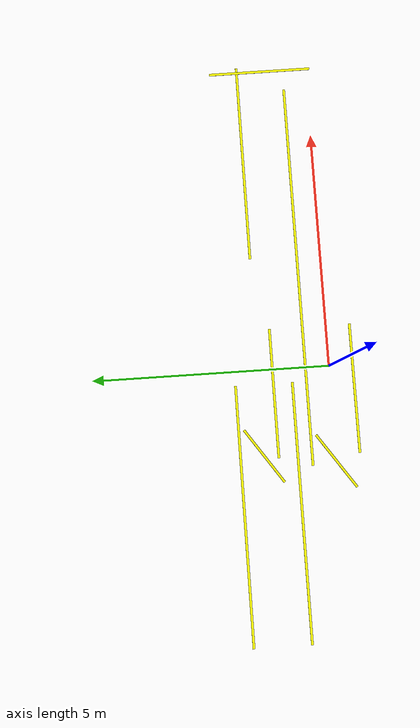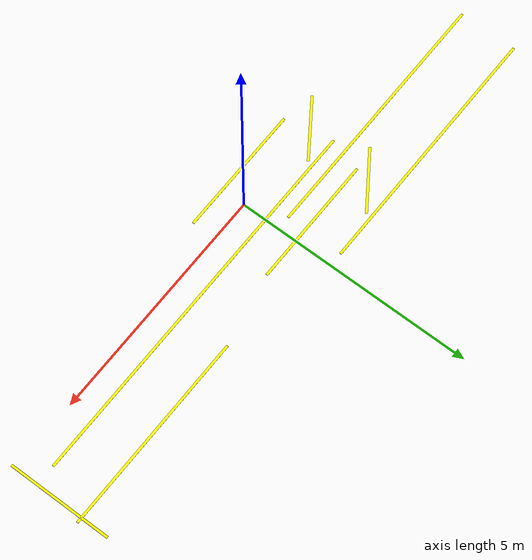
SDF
<?xml version="1.0" ?>
<sdf version="1.10">
  <model name="yellow_tape_lines_427">
    <static>true</static>

    <!-- Tape thickness -->
    <!-- width = 0.05m (~2 inches), height = 0.005 -->

    <!-- Helper: each segment = box -->

    <!-- LEFT TOP 213" -->
    <link name="seg_1">
      <pose>-3.0 2.0 0.01 0 0 0</pose>
      <visual name="v">
        <geometry><box><size>5.41 0.05 0.005</size></box></geometry>
        <material><diffuse>1 1 0 1</diffuse></material>
      </visual>
    </link>

    <!-- LEFT BOTTOM 213" -->
    <link name="seg_2">
      <pose>-3.0 0.8 0.01 0 0 0</pose>
      <visual name="v">
        <geometry><box><size>5.41 0.05 0.005</size></box></geometry>
        <material><diffuse>1 1 0 1</diffuse></material>
      </visual>
    </link>

    <!-- CENTER LONG 320" -->
    <link name="seg_3">
      <pose>2.0 0.5 0.01 0 0 0</pose>
      <visual name="v">
        <geometry><box><size>8.13 0.05 0.005</size></box></geometry>
        <material><diffuse>1 1 0 1</diffuse></material>
      </visual>
    </link>

    <!-- CENTER LOWER 107" -->
    <link name="seg_4">
      <pose>-0.5 -0.5 0.01 0 0 0</pose>
      <visual name="v">
        <geometry><box><size>2.72 0.05 0.005</size></box></geometry>
        <material><diffuse>1 1 0 1</diffuse></material>
      </visual>
    </link>

    <!-- CENTER UPPER 107" -->
    <link name="seg_5">
      <pose>-0.5 1.2 0.01 0 0 0</pose>
      <visual name="v">
        <geometry><box><size>2.72 0.05 0.005</size></box></geometry>
        <material><diffuse>1 1 0 1</diffuse></material>
      </visual>
    </link>

    <!-- RIGHT BOX (166") -->
    <link name="seg_6">
      <pose>4.5 1.5 0.01 0 0 0</pose>
      <visual name="v">
        <geometry><box><size>4.22 0.05 0.005</size></box></geometry>
        <material><diffuse>1 1 0 1</diffuse></material>
      </visual>
    </link>

    <!-- RIGHT VERTICAL 86" -->
    <link name="seg_7">
      <pose>6.5 1.0 0.01 0 0 1.5708</pose>
      <visual name="v">
        <geometry><box><size>2.18 0.05 0.005</size></box></geometry>
        <material><diffuse>1 1 0 1</diffuse></material>
      </visual>
    </link>

    <!-- SMALL CONNECTORS (angled approximations) -->
    <link name="seg_8">
      <pose>-1.8 1.5 0.01 0 0 0.6</pose>
      <visual name="v">
        <geometry><box><size>1.37 0.05 0.005</size></box></geometry>
        <material><diffuse>1 1 0 1</diffuse></material>
      </visual>
    </link>

    <link name="seg_9">
      <pose>-2.0 0.0 0.01 0 0 0.6</pose>
      <visual name="v">
        <geometry><box><size>1.37 0.05 0.005</size></box></geometry>
        <material><diffuse>1 1 0 1</diffuse></material>
      </visual>
    </link>

  </model>
</sdf>
